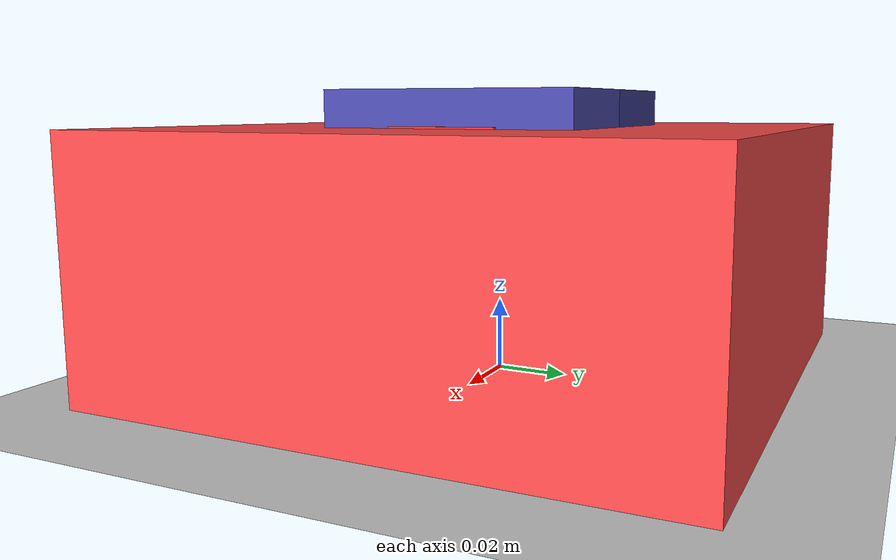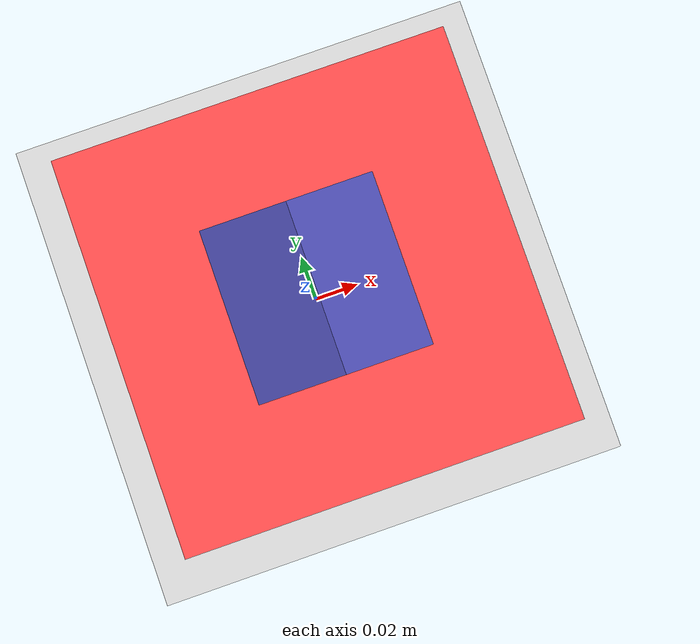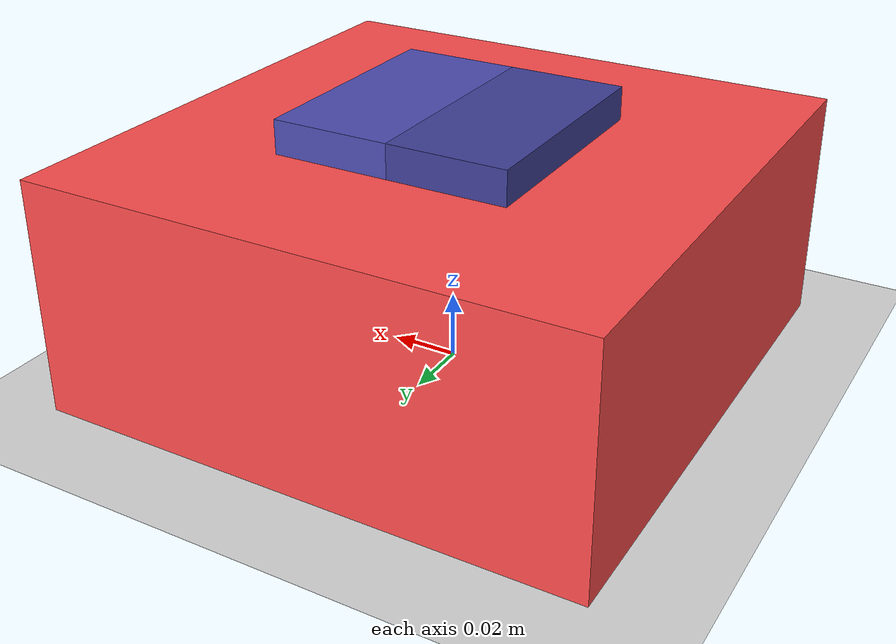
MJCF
<mujoco model="car_primitive_gen_square">
  <compiler angle="radian"/>
  <include file="/common/home/dm1487/robotics_research/ktamp/namo/test_xml/little-car-modeling-package/assets/mjcf/little_car.xml"/>
  <option timestep="0.002" integrator="implicitfast" cone="elliptic" iterations="100" gravity="0 0 -9.81"/>
  <default>
    <geom density="1"/>
  </default>

  <worldbody>
    <light name="sun" pos="0 0 2" dir="0 0 -1" directional="true"/>
    <geom name="ground" type="plane" size="2 2 0.1" rgba="0.85 0.85 0.85 1"
          condim="4" friction="0.5 0.005 0.001"/>

    <!-- Pushable object at origin (friction matches generate_envs.py obstacle setting) -->
    <body name="obstacle_1_movable" pos="0 0 0.035000">
      <joint type="free"/>
      <geom name="obstacle_1_movable" type="box"
            size="0.081667 0.081667 0.035000"
            mass="0.100000"
            friction="0.5 0.005 0.001"
            rgba="1 0.3 0.3 1" condim="4"/>
    </body>
  </worldbody>
</mujoco>

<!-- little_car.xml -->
<mujoco model="little_car">
  <compiler angle="radian" autolimits="true"/>
  <default>
    <geom condim="4"/>
    <joint damping="0.01" armature="0.0001"/>
  </default>
  <worldbody>
    <body name="car" pos="0 0 0.010000">
      <freejoint name="car_freejoint"/>
      <inertial pos="0.000000 0 0.037500" mass="0.350000"
                diaginertia="0.000266 0.000266 0.000286"/>
      <geom name="front_chassis_collision" type="box" pos="0.017500 0 0.037500"
            size="0.017500 0.035000 0.032500"
            rgba="0.3 0.3 0.7 1"/>
      <geom name="rear_chassis_collision" type="box" pos="-0.017500 0 0.037500"
            size="0.017500 0.035000 0.032500"
            rgba="0.25 0.25 0.6 1"/>
      <geom name="front_marker" type="box" pos="0.034000 0 0.050500"
            size="0.002000 0.015000 0.010000"
            rgba="1.0 0.2 0.2 1" contype="0" conaffinity="0"/>

      <body name="rear_support_body" pos="-0.030000 0.000000 0.002500">
        <joint name="rear_caster_joint" type="ball" damping="0.0001"/>
        <inertial pos="0 0 0" mass="0.025000"
                  diaginertia="0.000001 0.000001 0.000001"/>
        <geom name="rear_support" type="sphere"
              pos="0 0 0"
              size="0.002500"
              friction="0.000000 0.000000 0.000000"
              rgba="0.7 0.1 0.1 1"/>
      </body>

      <body name="front_support_body" pos="0.030000 0.000000 0.002500">
        <joint name="front_caster_joint" type="ball" damping="0.0001"/>
        <inertial pos="0 0 0" mass="0.025000"
                  diaginertia="0.000001 0.000001 0.000001"/>
        <geom name="front_support" type="sphere"
              pos="0 0 0"
              size="0.002500"
              friction="0.000000 0.000000 0.000000"
              rgba="0.1 0.7 0.1 1"/>
      </body>

      <body name="left_wheel" pos="0.000000 0.034000 0.015000">
        <inertial pos="0 0 0" mass="0.050000"
                  diaginertia="0.000003 0.000006 0.000003"/>
        <joint name="left_wheel_joint" type="hinge" axis="0 1 0"/>
        <geom name="left_wheel_collision" type="cylinder" size="0.015000 0.000500"
              euler="1.57079632679 0 0" rgba="0.1 0.1 0.1 1"/>
      </body>

      <body name="right_wheel" pos="0.000000 -0.034000 0.015000">
        <inertial pos="0 0 0" mass="0.050000"
                  diaginertia="0.000003 0.000006 0.000003"/>
        <joint name="right_wheel_joint" type="hinge" axis="0 1 0"/>
        <geom name="right_wheel_collision" type="cylinder" size="0.015000 0.000500"
              euler="1.57079632679 0 0" rgba="0.1 0.1 0.1 1"/>
      </body>
    </body>
  </worldbody>
  <contact>
    <exclude body1="car" body2="left_wheel"/>
    <exclude body1="car" body2="right_wheel"/>
  </contact>
  <actuator>
    <velocity name="left_wheel_drive" joint="left_wheel_joint"
              ctrlrange="-25.000000 25.000000"
              kv="0.750000" forcerange="-0.500000 0.500000"/>
    <velocity name="right_wheel_drive" joint="right_wheel_joint"
              ctrlrange="-25.000000 25.000000"
              kv="0.750000" forcerange="-0.500000 0.500000"/>
  </actuator>
</mujoco>
